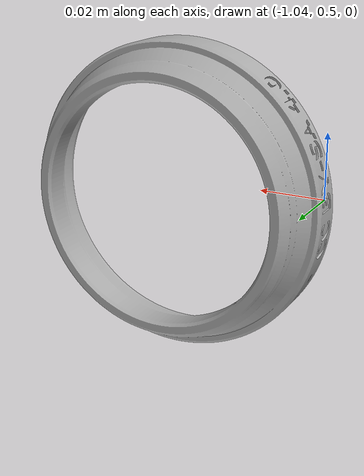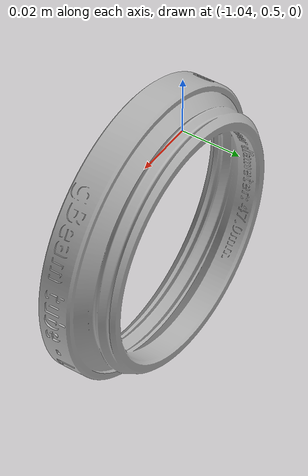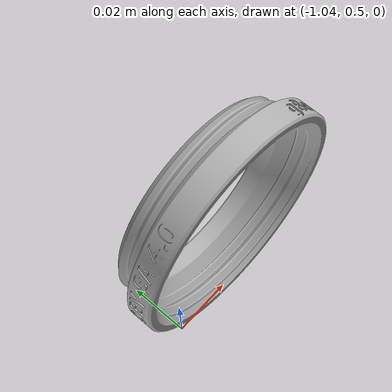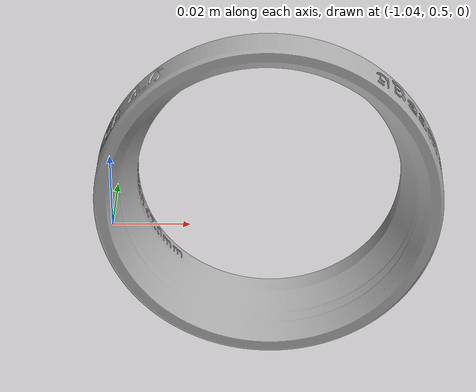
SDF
<sdf version='1.4'>
  <model name='tape2'>
    <link name='body'>
      <visual name='visual'>
        <geometry>
          <mesh>
            <uri>/home/daniel/FETCH_CORE/examples/toolbox/tape2.dae</uri>
            <scale>0.0015 0.0015 0.0015</scale>
          </mesh>
        </geometry>
      </visual>
      <collision name='tape2'>
        <pose>0 0 0 1.57 -0 0</pose>
        <geometry>
          <cylinder>
            <radius>0.0457491</radius>
            <length>0.021</length>
          </cylinder>
        </geometry>
        <surface>
          <friction>
            <ode>
              <mu>50</mu>
              <mu2>100</mu2>
            </ode>
          </friction>
          <bounce/>
          <contact>
            <ode/>
          </contact>
        </surface>
        <max_contacts>10</max_contacts>
      </collision>
      <velocity_decay>
        <linear>0</linear>
        <angular>0</angular>
      </velocity_decay>
      <self_collide>0</self_collide>
      <inertial>
        <inertia>
          <ixx>7.6e-07</ixx>
          <ixy>0</ixy>
          <ixz>0</ixz>
          <iyy>1.052e-05</iyy>
          <iyz>0</iyz>
          <izz>1.107e-05</izz>
        </inertia>
        <mass>0.0125</mass>
      </inertial>
      <kinematic>0</kinematic>
      <gravity>1</gravity>
    </link>
    <pose>-1 0.519198 0 0 -0 0</pose>
    <static>0</static>
    </model>
</sdf>
